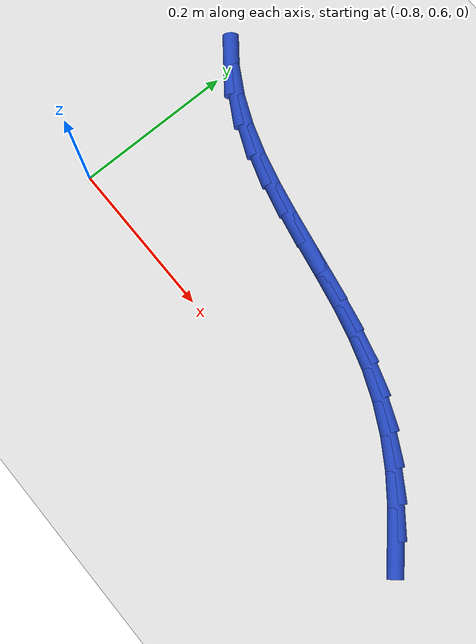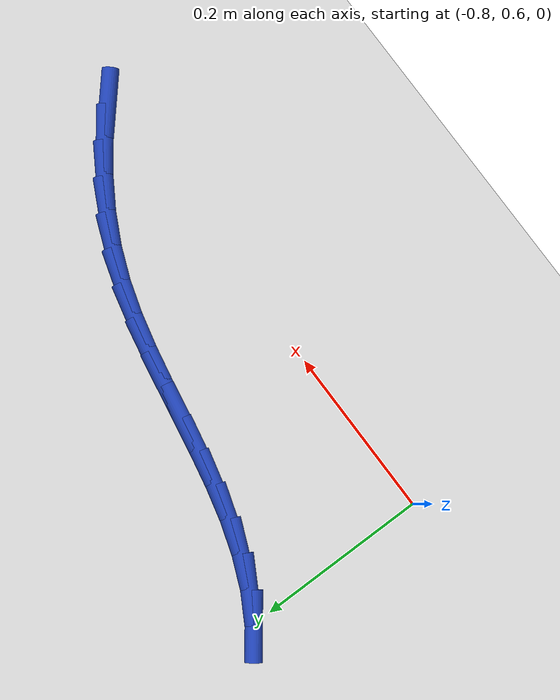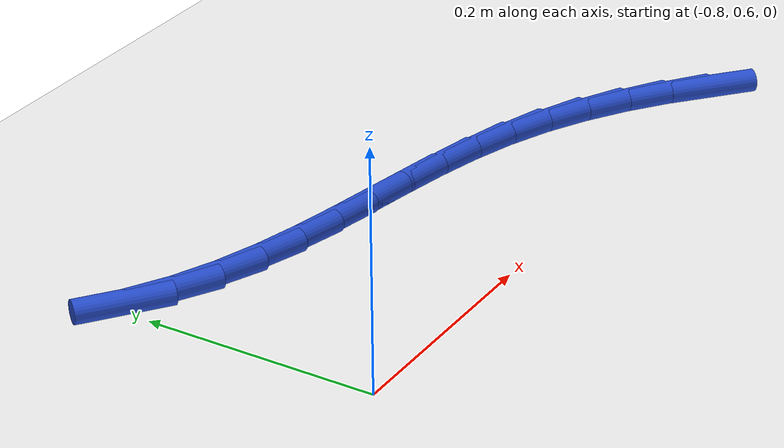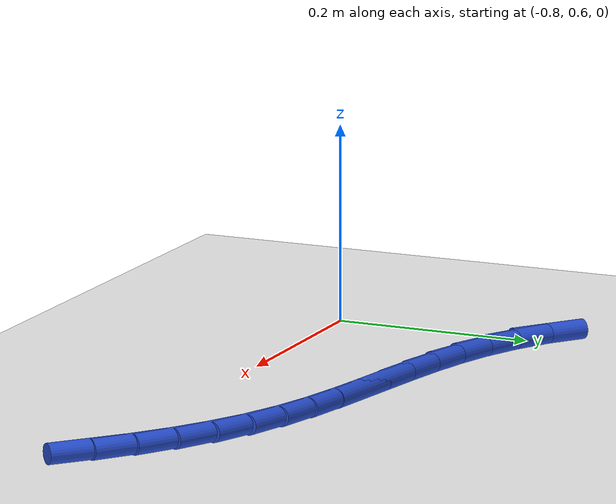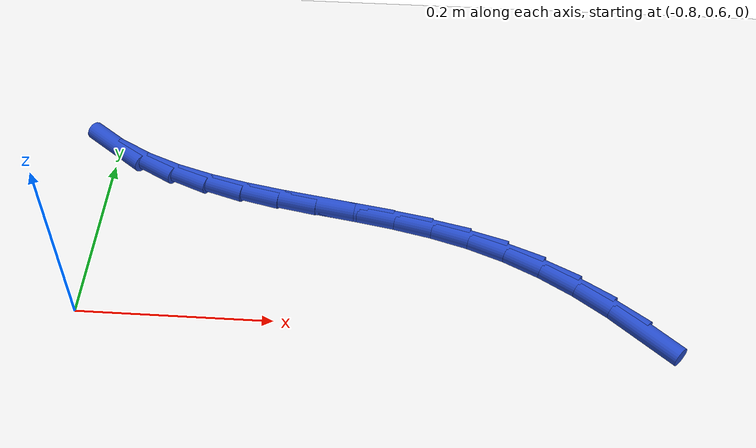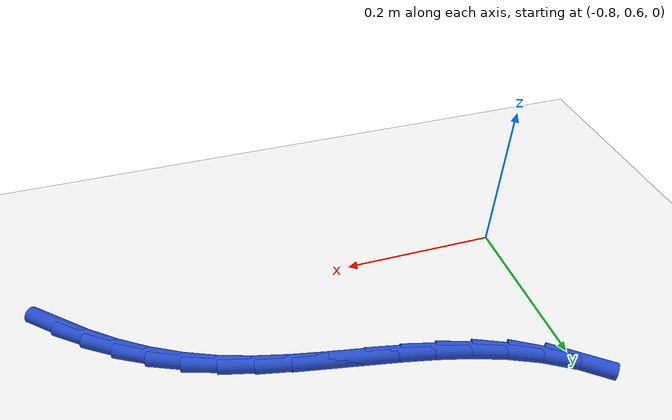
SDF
<sdf version="1.6">
 <world name="default">
  <model name="ground_plane">
   <static>1</static>
   <link name="link">
    <collision name="collision">
     <geometry><plane><normal>0 0 1</normal><size>100 100</size></plane></geometry>
     <surface><friction><ode><mu>100</mu><mu2>50</mu2></ode></friction></surface>
    </collision>
    <visual name="visual">
     <cast_shadows>0</cast_shadows>
     <geometry><plane><normal>0 0 1</normal><size>100 100</size></plane></geometry>
     <material>
      <script><uri>file://media/materials/scripts/gazebo.material</uri><name>Gazebo/WhiteGlow</name></script>
     </material>
    </visual>
   </link>
  </model>
  <model name="line">
   <link name="link_16">
    <pose>-0.2337613506623813 0.602151663472885 0.01 0 1.57 -0.7206651776646534</pose>
    <collision name="collision">
     <geometry><cylinder><radius>0.01</radius><length>0.08</length></cylinder></geometry>
    </collision>
    <visual name="visual">
     <material>
      <script><name>Gazebo/Blue</name><uri>file://media/materials/scripts/gazebo.material</uri></script>
     </material>
     <geometry><cylinder><radius>0.01</radius><length>0.08</length></cylinder></geometry>
    </visual>
   </link>
   <link name="link_17">
    <pose>-0.2649665151718419 0.6295574572622309 0.01 0 1.57 -0.6460247213195862</pose>
    <collision name="collision">
     <geometry><cylinder><radius>0.01</radius><length>0.08</length></cylinder></geometry>
    </collision>
    <visual name="visual">
     <material>
      <script><name>Gazebo/Blue</name><uri>file://media/materials/scripts/gazebo.material</uri></script>
     </material>
     <geometry><cylinder><radius>0.01</radius><length>0.08</length></cylinder></geometry>
    </visual>
   </link>
   <link name="link_18">
    <pose>-0.2978830139184856 0.654374872241317 0.01 0 1.57 -0.566171233026452</pose>
    <collision name="collision">
     <geometry><cylinder><radius>0.01</radius><length>0.08</length></cylinder></geometry>
    </collision>
    <visual name="visual">
     <material>
      <script><name>Gazebo/Blue</name><uri>file://media/materials/scripts/gazebo.material</uri></script>
     </material>
     <geometry><cylinder><radius>0.01</radius><length>0.08</length></cylinder></geometry>
    </visual>
   </link>
   <link name="link_19">
    <pose>-0.33245317723333717 0.6763469755826547 0.01 0 1.57 -0.48089942804368385</pose>
    <collision name="collision">
     <geometry><cylinder><radius>0.01</radius><length>0.08</length></cylinder></geometry>
    </collision>
    <visual name="visual">
     <material>
      <script><name>Gazebo/Blue</name><uri>file://media/materials/scripts/gazebo.material</uri></script>
     </material>
     <geometry><cylinder><radius>0.01</radius><length>0.08</length></cylinder></geometry>
    </visual>
   </link>
   <link name="link_20">
    <pose>-0.36861933544742187 0.6952168344587567 0.01 0 1.57 -0.3903455812087128</pose>
    <collision name="collision">
     <geometry><cylinder><radius>0.01</radius><length>0.08</length></cylinder></geometry>
    </collision>
    <visual name="visual">
     <material>
      <script><name>Gazebo/Blue</name><uri>file://media/materials/scripts/gazebo.material</uri></script>
     </material>
     <geometry><cylinder><radius>0.01</radius><length>0.08</length></cylinder></geometry>
    </visual>
   </link>
   <link name="link_21">
    <pose>-0.4063230328004683 0.7107303580053506 0.01 0 1.57 -0.303716786756883</pose>
    <collision name="collision">
     <geometry><cylinder><radius>0.01</radius><length>0.08</length></cylinder></geometry>
    </collision>
    <visual name="visual">
     <material>
      <script><name>Gazebo/Blue</name><uri>file://media/materials/scripts/gazebo.material</uri></script>
     </material>
     <geometry><cylinder><radius>0.01</radius><length>0.08</length></cylinder></geometry>
    </visual>
   </link>
   <link name="link_22">
    <pose>-0.4454097744053602 0.7229806665117052 0.01 0 1.57 -0.2385015430849483</pose>
    <collision name="collision">
     <geometry><cylinder><radius>0.01</radius><length>0.08</length></cylinder></geometry>
    </collision>
    <visual name="visual">
     <material>
      <script><name>Gazebo/Blue</name><uri>file://media/materials/scripts/gazebo.material</uri></script>
     </material>
     <geometry><cylinder><radius>0.01</radius><length>0.08</length></cylinder></geometry>
    </visual>
   </link>
   <link name="link_23">
    <pose>-0.48553804509367693 0.7327370164393013 0.01 0 1.57 -0.19617558059812404</pose>
    <collision name="collision">
     <geometry><cylinder><radius>0.01</radius><length>0.08</length></cylinder></geometry>
    </collision>
    <visual name="visual">
     <material>
      <script><name>Gazebo/Blue</name><uri>file://media/materials/scripts/gazebo.material</uri></script>
     </material>
     <geometry><cylinder><radius>0.01</radius><length>0.08</length></cylinder></geometry>
    </visual>
   </link>
   <link name="link_24">
    <pose>-0.5263447725933722 0.7408465998479788 0.01 0 1.57 -0.17592574702107977</pose>
    <collision name="collision">
     <geometry><cylinder><radius>0.01</radius><length>0.08</length></cylinder></geometry>
    </collision>
    <visual name="visual">
     <material>
      <script><name>Gazebo/Blue</name><uri>file://media/materials/scripts/gazebo.material</uri></script>
     </material>
     <geometry><cylinder><radius>0.01</radius><length>0.08</length></cylinder></geometry>
    </visual>
   </link>
   <link name="link_25">
    <pose>-0.5674668846324007 0.7481566087975784 0.01 0 1.57 -0.17724928655361932</pose>
    <collision name="collision">
     <geometry><cylinder><radius>0.01</radius><length>0.08</length></cylinder></geometry>
    </collision>
    <visual name="visual">
     <material>
      <script><name>Gazebo/Blue</name><uri>file://media/materials/scripts/gazebo.material</uri></script>
     </material>
     <geometry><cylinder><radius>0.01</radius><length>0.08</length></cylinder></geometry>
    </visual>
   </link>
   <link name="link_26">
    <pose>-0.6085413089387165 0.7555142353479405 0.01 0 1.57 -0.20022447232874</pose>
    <collision name="collision">
     <geometry><cylinder><radius>0.01</radius><length>0.08</length></cylinder></geometry>
    </collision>
    <visual name="visual">
     <material>
      <script><name>Gazebo/Blue</name><uri>file://media/materials/scripts/gazebo.material</uri></script>
     </material>
     <geometry><cylinder><radius>0.01</radius><length>0.08</length></cylinder></geometry>
    </visual>
   </link>
   <link name="link_27">
    <pose>-0.6492049732402734 0.763766671558905 0.01 0 1.57 -0.24549719889906232</pose>
    <collision name="collision">
     <geometry><cylinder><radius>0.01</radius><length>0.08</length></cylinder></geometry>
    </collision>
    <visual name="visual">
     <material>
      <script><name>Gazebo/Blue</name><uri>file://media/materials/scripts/gazebo.material</uri></script>
     </material>
     <geometry><cylinder><radius>0.01</radius><length>0.08</length></cylinder></geometry>
    </visual>
   </link>
   <link name="link_28">
    <pose>-0.6890948052650263 0.7737611094903126 0.01 0 1.57 -0.31397351804022045</pose>
    <collision name="collision">
     <geometry><cylinder><radius>0.01</radius><length>0.08</length></cylinder></geometry>
    </collision>
    <visual name="visual">
     <material>
      <script><name>Gazebo/Blue</name><uri>file://media/materials/scripts/gazebo.material</uri></script>
     </material>
     <geometry><cylinder><radius>0.01</radius><length>0.08</length></cylinder></geometry>
    </visual>
   </link>
   <link name="link_29">
    <pose>-0.7278477327409286 0.786344741202003 0.01 0 1.57 -0.40612634844174816</pose>
    <collision name="collision">
     <geometry><cylinder><radius>0.01</radius><length>0.08</length></cylinder></geometry>
    </collision>
    <visual name="visual">
     <material>
      <script><name>Gazebo/Blue</name><uri>file://media/materials/scripts/gazebo.material</uri></script>
     </material>
     <geometry><cylinder><radius>0.01</radius><length>0.08</length></cylinder></geometry>
    </visual>
   </link>
   <link name="link_30">
    <pose>-0.7651006833959353 0.8023647587538172 0.01 0 1.57 -0.520865439983375</pose>
    <collision name="collision">
     <geometry><cylinder><radius>0.01</radius><length>0.08</length></cylinder></geometry>
    </collision>
    <visual name="visual">
     <material>
      <script><name>Gazebo/Blue</name><uri>file://media/materials/scripts/gazebo.material</uri></script>
     </material>
     <geometry><cylinder><radius>0.01</radius><length>0.08</length></cylinder></geometry>
    </visual>
   </link>
   <link name="link_31">
    <pose>-0.8004905849580001 0.8226683542055954 0.01 0 1.57 -0.6542498344690967</pose>
    <collision name="collision">
     <geometry><cylinder><radius>0.01</radius><length>0.08</length></cylinder></geometry>
    </collision>
    <visual name="visual">
     <material>
      <script><name>Gazebo/Blue</name><uri>file://media/materials/scripts/gazebo.material</uri></script>
     </material>
     <geometry><cylinder><radius>0.01</radius><length>0.08</length></cylinder></geometry>
    </visual>
   </link>
  </model>
 </world>
</sdf>
